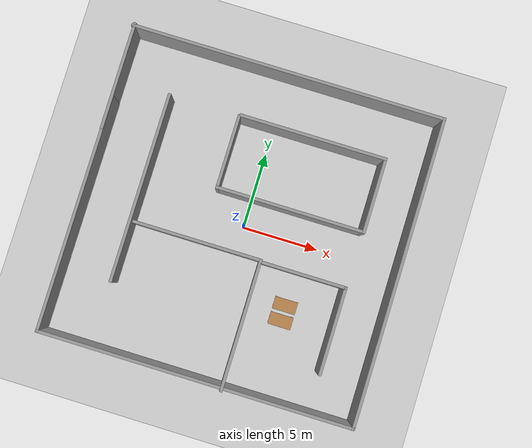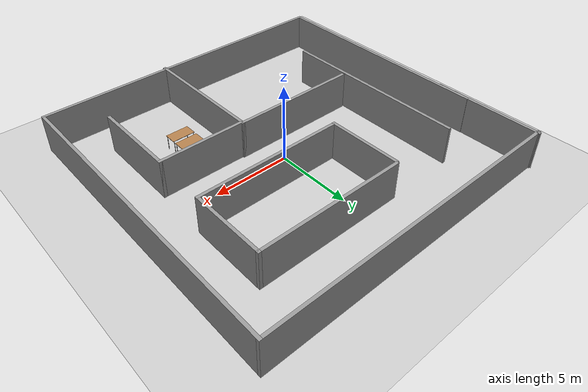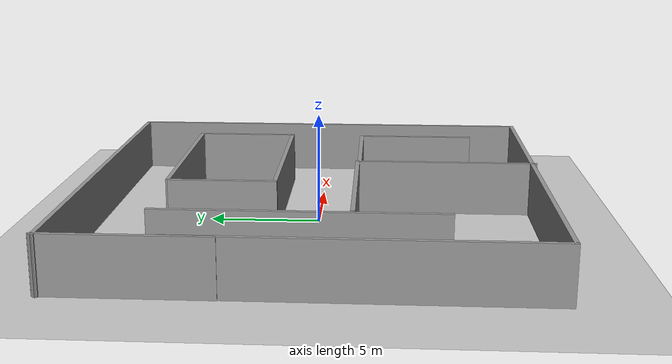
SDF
<sdf version="1.4">
 <world name="default">
  <light name="sun" type="directional">
   <pose>0 0 10 0 -0 0</pose>
   <diffuse>0.8 0.8 0.8 1</diffuse>
   <specular>0.2 0.2 0.2 1</specular>
   <attenuation>
    <range>1000</range>
    <constant>0.9</constant>
    <linear>0.01</linear>
    <quadratic>0.001</quadratic>
   </attenuation>
   <direction>-0.5 0.1 -0.9</direction>
  </light>
  <model name="ground_plane">
   <static>1</static>
   <link name="link">
    <collision name="collision">
     <geometry><plane><normal>0 0 1</normal><size>100 100</size></plane></geometry>
     <surface><friction><ode><mu>100</mu><mu2>50</mu2></ode></friction></surface>
    </collision>
    <visual name="visual">
     <cast_shadows>0</cast_shadows>
     <geometry><plane><normal>0 0 1</normal><size>100 100</size></plane></geometry>
     <material>
      <script><uri>file://media/materials/scripts/gazebo.material</uri><name>Gazebo/Grey</name></script>
     </material>
    </visual>
    <velocity_decay><linear>0</linear><angular>0</angular></velocity_decay>
   </link>
  </model>
  <model name="contest">
   <link name="Wall_10">
    <collision name="Wall_10_Collision">
     <geometry><box><size>20.2242 0.2 2.5</size></box></geometry>
     <pose>0 0 1.25 0 -0 0</pose>
    </collision>
    <visual name="Wall_10_Visual">
     <pose>0 0 1.25 0 -0 0</pose>
     <geometry><box><size>20.2242 0.2 2.5</size></box></geometry>
     <material>
      <script><uri>file://media/materials/scripts/gazebo.material</uri><name>Gazebo/Grey</name></script>
     </material>
    </visual>
    <velocity_decay><linear>0</linear><angular>0</angular></velocity_decay>
    <pose>10.089 0.066863 0 0 -0 1.5708</pose>
   </link>
   <link name="Wall_11">
    <collision name="Wall_11_Collision">
     <geometry><box><size>20.6488 0.2 2.5</size></box></geometry>
     <pose>0 0 1.25 0 -0 0</pose>
    </collision>
    <visual name="Wall_11_Visual">
     <pose>0 0 1.25 0 -0 0</pose>
     <geometry><box><size>20.6488 0.2 2.5</size></box></geometry>
     <material>
      <script><uri>file://media/materials/scripts/gazebo.material</uri><name>Gazebo/Grey</name></script>
     </material>
    </visual>
    <velocity_decay><linear>0</linear><angular>0</angular></velocity_decay>
    <pose>-0.135401 10.079 0 0 -0 3.14159</pose>
   </link>
   <link name="Wall_12">
    <collision name="Wall_12_Collision">
     <geometry><box><size>0.300066 0.2 2.5</size></box></geometry>
     <pose>0 0 1.25 0 -0 0</pose>
    </collision>
    <visual name="Wall_12_Visual">
     <pose>0 0 1.25 0 -0 0</pose>
     <geometry><box><size>0.300066 0.2 2.5</size></box></geometry>
     <material>
      <script><uri>file://media/materials/scripts/gazebo.material</uri><name>Gazebo/Grey</name></script>
     </material>
    </visual>
    <velocity_decay><linear>0</linear><angular>0</angular></velocity_decay>
    <pose>-10.3244 10.1144 0 0 -0 0.785398</pose>
   </link>
   <link name="Wall_13">
    <collision name="Wall_13_Collision">
     <geometry><box><size>7.06344 0.2 2.5</size></box></geometry>
     <pose>0 0 1.25 0 -0 0</pose>
    </collision>
    <visual name="Wall_13_Visual">
     <pose>0 0 1.25 0 -0 0</pose>
     <geometry><box><size>7.06344 0.2 2.5</size></box></geometry>
     <material>
      <script><uri>file://media/materials/scripts/gazebo.material</uri><name>Gazebo/Grey</name></script>
     </material>
    </visual>
    <velocity_decay><linear>0</linear><angular>0</angular></velocity_decay>
    <pose>-10.289 6.71803 0 0 0 -1.5708</pose>
   </link>
   <link name="Wall_15">
    <collision name="Wall_15_Collision">
     <geometry><box><size>12.3649 0.2 2.5</size></box></geometry>
     <pose>0 0 1.25 0 -0 0</pose>
    </collision>
    <visual name="Wall_15_Visual">
     <pose>0 0 1.25 0 -0 0</pose>
     <geometry><box><size>12.3649 0.2 2.5</size></box></geometry>
     <material>
      <script><uri>file://media/materials/scripts/gazebo.material</uri><name>Gazebo/Grey</name></script>
     </material>
    </visual>
    <velocity_decay><linear>0</linear><angular>0</angular></velocity_decay>
    <pose>-6.85171 0.404486 0 0 0 -1.5708</pose>
   </link>
   <link name="Wall_17">
    <collision name="Wall_17_Collision">
     <geometry><box><size>8.43471 0.2 2.5</size></box></geometry>
     <pose>0 0 1.25 0 -0 0</pose>
    </collision>
    <visual name="Wall_17_Visual">
     <pose>0 0 1.25 0 -0 0</pose>
     <geometry><box><size>8.43471 0.2 2.5</size></box></geometry>
     <material>
      <script><uri>file://media/materials/scripts/gazebo.material</uri><name>Gazebo/Grey</name></script>
     </material>
    </visual>
    <velocity_decay><linear>0</linear><angular>0</angular></velocity_decay>
    <pose>-2.45363 -1.74777 0 0 -0 0</pose>
   </link>
   <link name="Wall_18">
    <collision name="Wall_18_Collision">
     <geometry><box><size>8.52828 0.2 2.5</size></box></geometry>
     <pose>0 0 1.25 0 -0 0</pose>
    </collision>
    <visual name="Wall_18_Visual">
     <pose>0 0 1.25 0 -0 0</pose>
     <geometry><box><size>8.52828 0.2 2.5</size></box></geometry>
     <material>
      <script><uri>file://media/materials/scripts/gazebo.material</uri><name>Gazebo/Grey</name></script>
     </material>
    </visual>
    <velocity_decay><linear>0</linear><angular>0</angular></velocity_decay>
    <pose>1.66373 -5.91191 0 0 0 -1.5708</pose>
   </link>
   <link name="Wall_25">
    <collision name="Wall_25_Collision">
     <geometry><box><size>5.62742 0.2 2.5</size></box></geometry>
     <pose>0 0 1.25 0 -0 0</pose>
    </collision>
    <visual name="Wall_25_Visual">
     <pose>0 0 1.25 0 -0 0</pose>
     <geometry><box><size>5.62742 0.2 2.5</size></box></geometry>
     <material>
      <script><uri>file://media/materials/scripts/gazebo.material</uri><name>Gazebo/Grey</name></script>
     </material>
    </visual>
    <velocity_decay><linear>0</linear><angular>0</angular></velocity_decay>
    <pose>4.47101 -1.84134 0 0 -0 0</pose>
   </link>
   <link name="Wall_26">
    <collision name="Wall_26_Collision">
     <geometry><box><size>5.721 0.2 2.5</size></box></geometry>
     <pose>0 0 1.25 0 -0 0</pose>
    </collision>
    <visual name="Wall_26_Visual">
     <pose>0 0 1.25 0 -0 0</pose>
     <geometry><box><size>5.721 0.2 2.5</size></box></geometry>
     <material>
      <script><uri>file://media/materials/scripts/gazebo.material</uri><name>Gazebo/Grey</name></script>
     </material>
    </visual>
    <velocity_decay><linear>0</linear><angular>0</angular></velocity_decay>
    <pose>7.18472 -4.60184 0 0 0 -1.5708</pose>
   </link>
   <link name="Wall_28">
    <collision name="Wall_28_Collision">
     <geometry><box><size>4.87881 0.2 2.5</size></box></geometry>
     <pose>0 0 1.25 0 -0 0</pose>
    </collision>
    <visual name="Wall_28_Visual">
     <pose>0 0 1.25 0 -0 0</pose>
     <geometry><box><size>4.87881 0.2 2.5</size></box></geometry>
     <material>
      <script><uri>file://media/materials/scripts/gazebo.material</uri><name>Gazebo/Grey</name></script>
     </material>
    </visual>
    <velocity_decay><linear>0</linear><angular>0</angular></velocity_decay>
    <pose>-2.26647 4.14753 0 0 0 -1.5708</pose>
   </link>
   <link name="Wall_29">
    <collision name="Wall_29_Collision">
     <geometry><box><size>9.74477 0.2 2.5</size></box></geometry>
     <pose>0 0 1.25 0 -0 0</pose>
    </collision>
    <visual name="Wall_29_Visual">
     <pose>0 0 1.25 0 -0 0</pose>
     <geometry><box><size>9.74477 0.2 2.5</size></box></geometry>
     <material>
      <script><uri>file://media/materials/scripts/gazebo.material</uri><name>Gazebo/Grey</name></script>
     </material>
    </visual>
    <velocity_decay><linear>0</linear><angular>0</angular></velocity_decay>
    <pose>2.50591 1.80813 0 0 -0 0</pose>
   </link>
   <link name="Wall_30">
    <collision name="Wall_30_Collision">
     <geometry><box><size>4.97239 0.2 2.5</size></box></geometry>
     <pose>0 0 1.25 0 -0 0</pose>
    </collision>
    <visual name="Wall_30_Visual">
     <pose>0 0 1.25 0 -0 0</pose>
     <geometry><box><size>4.97239 0.2 2.5</size></box></geometry>
     <material>
      <script><uri>file://media/materials/scripts/gazebo.material</uri><name>Gazebo/Grey</name></script>
     </material>
    </visual>
    <velocity_decay><linear>0</linear><angular>0</angular></velocity_decay>
    <pose>7.2783 4.19432 0 0 -0 1.5708</pose>
   </link>
   <link name="Wall_31">
    <collision name="Wall_31_Collision">
     <geometry><box><size>9.6512 0.2 2.5</size></box></geometry>
     <pose>0 0 1.25 0 -0 0</pose>
    </collision>
    <visual name="Wall_31_Visual">
     <pose>0 0 1.25 0 -0 0</pose>
     <geometry><box><size>9.6512 0.2 2.5</size></box></geometry>
     <material>
      <script><uri>file://media/materials/scripts/gazebo.material</uri><name>Gazebo/Grey</name></script>
     </material>
    </visual>
    <velocity_decay><linear>0</linear><angular>0</angular></velocity_decay>
    <pose>2.5527 6.58052 0 0 -0 3.14159</pose>
   </link>
   <link name="Wall_8">
    <collision name="Wall_8_Collision">
     <geometry><box><size>15.454 0.2 2.5</size></box></geometry>
     <pose>0 0 1.25 0 -0 0</pose>
    </collision>
    <visual name="Wall_8_Visual">
     <pose>0 0 1.25 0 -0 0</pose>
     <geometry><box><size>15.454 0.2 2.5</size></box></geometry>
     <material>
      <script><uri>file://media/materials/scripts/gazebo.material</uri><name>Gazebo/Grey</name></script>
     </material>
    </visual>
    <velocity_decay><linear>0</linear><angular>0</angular></velocity_decay>
    <pose>-10.26 -2.31828 0 0 0 -1.5708</pose>
   </link>
   <link name="Wall_9">
    <collision name="Wall_9_Collision">
     <geometry><box><size>20.549 0.2 2.5</size></box></geometry>
     <pose>0 0 1.25 0 -0 0</pose>
    </collision>
    <visual name="Wall_9_Visual">
     <pose>0 0 1.25 0 -0 0</pose>
     <geometry><box><size>20.549 0.2 2.5</size></box></geometry>
     <material>
      <script><uri>file://media/materials/scripts/gazebo.material</uri><name>Gazebo/Grey</name></script>
     </material>
    </visual>
    <velocity_decay><linear>0</linear><angular>0</angular></velocity_decay>
    <pose>-0.085518 -9.94526 0 0 -0 0</pose>
   </link>
   <static>1</static>
  </model>
  <model name="table">
   <static>1</static>
   <link name="link">
    <collision name="surface">
     <pose>0 0 1 0 -0 0</pose>
     <geometry><box><size>1.5 0.8 0.03</size></box></geometry>
     <surface><friction><ode><mu>0.6</mu><mu2>0.6</mu2></ode></friction></surface>
    </collision>
    <visual name="visual1">
     <pose>0 0 1 0 -0 0</pose>
     <geometry><box><size>1.5 0.8 0.03</size></box></geometry>
     <material>
      <script><uri>file://media/materials/scripts/gazebo.material</uri><name>Gazebo/Wood</name></script>
     </material>
    </visual>
    <collision name="front_left_leg">
     <pose>0.68 0.38 0.5 0 -0 0</pose>
     <geometry><cylinder><radius>0.02</radius><length>1</length></cylinder></geometry>
    </collision>
    <visual name="front_left_leg">
     <pose>0.68 0.38 0.5 0 -0 0</pose>
     <geometry><cylinder><radius>0.02</radius><length>1</length></cylinder></geometry>
     <material>
      <script><uri>file://media/materials/scripts/gazebo.material</uri><name>Gazebo/Grey</name></script>
     </material>
    </visual>
    <collision name="front_right_leg">
     <pose>0.68 -0.38 0.5 0 -0 0</pose>
     <geometry><cylinder><radius>0.02</radius><length>1</length></cylinder></geometry>
    </collision>
    <visual name="front_right_leg">
     <pose>0.68 -0.38 0.5 0 -0 0</pose>
     <geometry><cylinder><radius>0.02</radius><length>1</length></cylinder></geometry>
     <material>
      <script><uri>file://media/materials/scripts/gazebo.material</uri><name>Gazebo/Grey</name></script>
     </material>
    </visual>
    <collision name="back_right_leg">
     <pose>-0.68 -0.38 0.5 0 -0 0</pose>
     <geometry><cylinder><radius>0.02</radius><length>1</length></cylinder></geometry>
    </collision>
    <visual name="back_right_leg">
     <pose>-0.68 -0.38 0.5 0 -0 0</pose>
     <geometry><cylinder><radius>0.02</radius><length>1</length></cylinder></geometry>
     <material>
      <script><uri>file://media/materials/scripts/gazebo.material</uri><name>Gazebo/Grey</name></script>
     </material>
    </visual>
    <collision name="back_left_leg">
     <pose>-0.68 0.38 0.5 0 -0 0</pose>
     <geometry><cylinder><radius>0.02</radius><length>1</length></cylinder></geometry>
    </collision>
    <visual name="back_left_leg">
     <pose>-0.68 0.38 0.5 0 -0 0</pose>
     <geometry><cylinder><radius>0.02</radius><length>1</length></cylinder></geometry>
     <material>
      <script><uri>file://media/materials/scripts/gazebo.material</uri><name>Gazebo/Grey</name></script>
     </material>
    </visual>
    <velocity_decay><linear>0</linear><angular>0</angular></velocity_decay>
   </link>
   <pose>4 -4 0 0 -0 0</pose>
  </model>
  <model name="table_0">
   <static>1</static>
   <link name="link">
    <collision name="surface">
     <pose>0 0 1 0 -0 0</pose>
     <geometry><box><size>1.5 0.8 0.03</size></box></geometry>
     <surface><friction><ode><mu>0.6</mu><mu2>0.6</mu2></ode></friction></surface>
    </collision>
    <visual name="visual1">
     <pose>0 0 1 0 -0 0</pose>
     <geometry><box><size>1.5 0.8 0.03</size></box></geometry>
     <material>
      <script><uri>file://media/materials/scripts/gazebo.material</uri><name>Gazebo/Wood</name></script>
     </material>
    </visual>
    <collision name="front_left_leg">
     <pose>0.68 0.38 0.5 0 -0 0</pose>
     <geometry><cylinder><radius>0.02</radius><length>1</length></cylinder></geometry>
    </collision>
    <visual name="front_left_leg">
     <pose>0.68 0.38 0.5 0 -0 0</pose>
     <geometry><cylinder><radius>0.02</radius><length>1</length></cylinder></geometry>
     <material>
      <script><uri>file://media/materials/scripts/gazebo.material</uri><name>Gazebo/Grey</name></script>
     </material>
    </visual>
    <collision name="front_right_leg">
     <pose>0.68 -0.38 0.5 0 -0 0</pose>
     <geometry><cylinder><radius>0.02</radius><length>1</length></cylinder></geometry>
    </collision>
    <visual name="front_right_leg">
     <pose>0.68 -0.38 0.5 0 -0 0</pose>
     <geometry><cylinder><radius>0.02</radius><length>1</length></cylinder></geometry>
     <material>
      <script><uri>file://media/materials/scripts/gazebo.material</uri><name>Gazebo/Grey</name></script>
     </material>
    </visual>
    <collision name="back_right_leg">
     <pose>-0.68 -0.38 0.5 0 -0 0</pose>
     <geometry><cylinder><radius>0.02</radius><length>1</length></cylinder></geometry>
    </collision>
    <visual name="back_right_leg">
     <pose>-0.68 -0.38 0.5 0 -0 0</pose>
     <geometry><cylinder><radius>0.02</radius><length>1</length></cylinder></geometry>
     <material>
      <script><uri>file://media/materials/scripts/gazebo.material</uri><name>Gazebo/Grey</name></script>
     </material>
    </visual>
    <collision name="back_left_leg">
     <pose>-0.68 0.38 0.5 0 -0 0</pose>
     <geometry><cylinder><radius>0.02</radius><length>1</length></cylinder></geometry>
    </collision>
    <visual name="back_left_leg">
     <pose>-0.68 0.38 0.5 0 -0 0</pose>
     <geometry><cylinder><radius>0.02</radius><length>1</length></cylinder></geometry>
     <material>
      <script><uri>file://media/materials/scripts/gazebo.material</uri><name>Gazebo/Grey</name></script>
     </material>
    </visual>
    <velocity_decay><linear>0</linear><angular>0</angular></velocity_decay>
   </link>
   <pose>4 -5 0 0 -0 0</pose>
  </model>
  <physics type="ode">
   <max_step_size>0.001</max_step_size>
   <real_time_factor>1</real_time_factor>
   <real_time_update_rate>1000</real_time_update_rate>
   <gravity>0 0 -9.8</gravity>
  </physics>
  <scene><ambient>0.4 0.4 0.4 1</ambient><background>0.7 0.7 0.7 1</background><shadows>1</shadows></scene>
  <spherical_coordinates>
   <surface_model>EARTH_WGS84</surface_model>
   <latitude_deg>0</latitude_deg>
   <longitude_deg>0</longitude_deg>
   <elevation>0</elevation>
   <heading_deg>0</heading_deg>
  </spherical_coordinates>
 </world>
</sdf>
